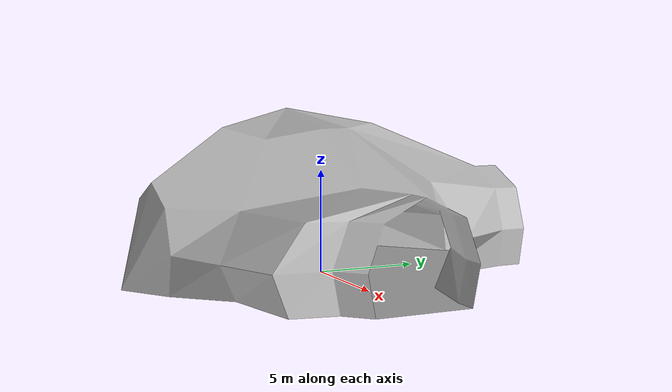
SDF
<?xml version="1.0" ?>
<sdf version="1.6">
  <model name="cave_tile_start">
    <static>true</static>
    <link name="link">
      <pose>0 0 0 1.570796 0 0</pose>
      <collision name="collision">
        <geometry>
          <mesh>
            <uri>model://cave_tile_start/meshes/cave_tile_start.obj</uri>
          </mesh>
        </geometry>
      </collision>
      <visual name="visual">
        <geometry>
          <mesh>
            <uri>model://cave_tile_start/meshes/cave_tile_start.obj</uri>
          </mesh>
        </geometry>
      </visual>
    </link>
  </model>
</sdf>
